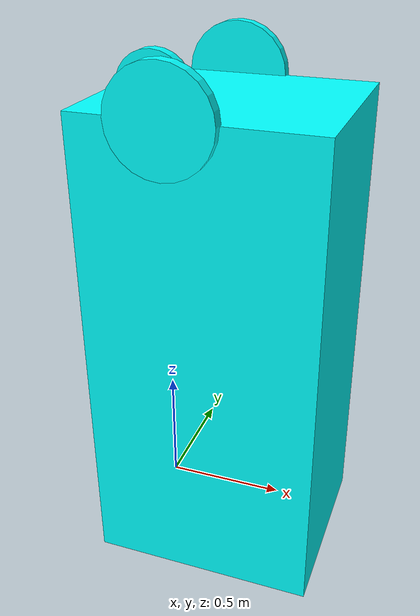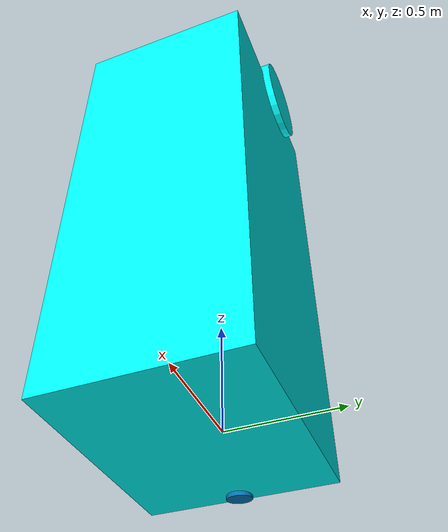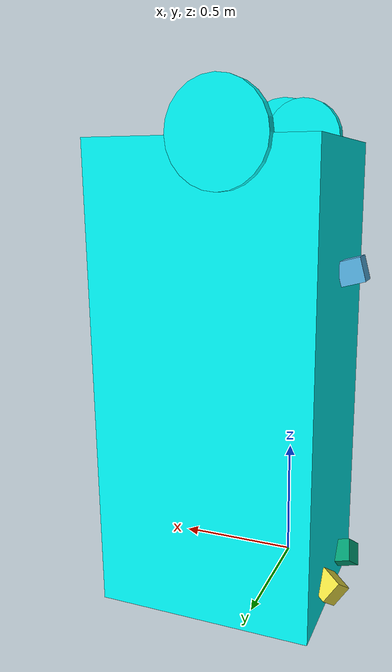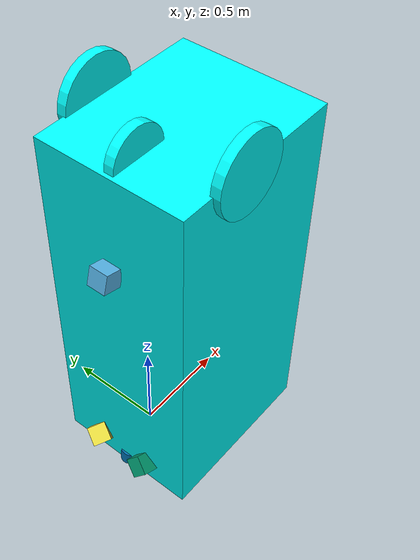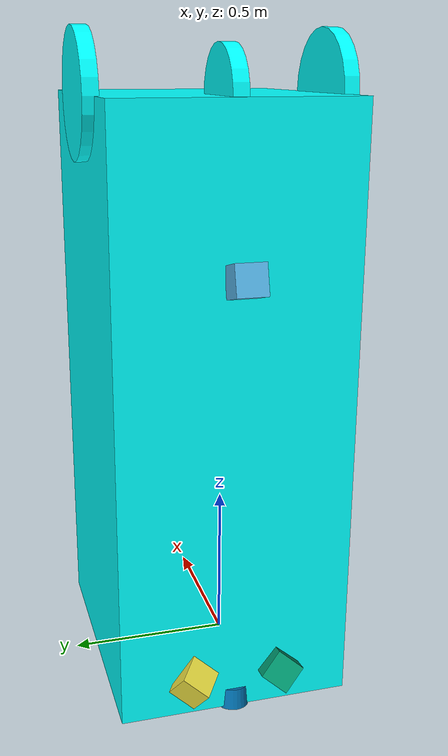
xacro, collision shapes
<?xml version="1.0"?>
<robot xmlns:xacro="http://www.ros.org/wiki/xacro" name="navvis_m6">

  <xacro:include filename="$(find lab5_package)/urdf/my_robot.xacro" />

  <link name="base_link">
  </link>

  <joint name="base_link_base_joint" type="fixed">
    <parent link="base_link" />
    <child link="base" />
    <origin xyz="0.07 0 1.792" rpy="0.0 ${pi} 0.0" />
  </joint>

  <joint name="base_link_imu_joint" type="fixed">
    <parent link="base_link" />
    <child link="imu" />
    <origin xyz="0.0 0.0 0.0" rpy="3.1405788 0.0034281 3.1382064" />
  </joint>

  <link name="imu">
    <visual>
    <geometry>
    <sphere radius="0.1" />
    </geometry>
    </visual>
    <collision>
    <geometry>
    <sphere radius="0.1" />
    </geometry>
    </collision>
  </link>

</robot>

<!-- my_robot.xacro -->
<robot xmlns:xacro="http://www.ros.org/wiki/xacro" name="my_robot">
    <!-- Include the XACRO file that defines a Hokuyo LIDAR. -->
<xacro:include filename="$(find gazebo_plugins)/test/multi_robot_scenario/xacro/laser/hokuyo.xacro" />
    <!-- Include the XACRO file that defines a Hokuyo LIDAR. -->
<xacro:include filename="$(find velodyne_description)/urdf/VLP-16.urdf.xacro"/>

  <link name="base">

    <visual>
      <origin xyz="-0.2 0 .99" rpy="0 0 0"/>
      <geometry>
        <box size="0.94 0.78 1.98"/>
      </geometry>
      <material name="Cyan">
      	<color rgba="0 1.0 1.0 1.0"/>
      </material>
    </visual>

    <collision>
      <origin xyz="-0.2 0 .99" rpy="0 0 0"/>
      <geometry>
        <box size="0.94 0.78 1.98"/>
      </geometry>
    </collision>

  </link>

    <xacro:laser name="laser_vert_bottom" parent="base" xyz="0.3157894464801903 -0.002068548615034871 0.5099999434059285" rpy="3.1354753 -1.3045001 0.0024658" meshes="package://gazebo_plugins/test/multi_robot_scenario/meshes/laser" />

    <xacro:laser name="laser_vert_top_right" parent="base" xyz="0.2978 -0.1450 1.8451" rpy="-1.1760 0.6313 1.9377" meshes="package://gazebo_plugins/test/multi_robot_scenario/meshes/laser" />

    <xacro:laser name="laser_vert_top_left" parent="base" xyz="0.2997 0.1531 1.8451" rpy="1.1760 0.6198 1.9560" meshes="package://gazebo_plugins/test/multi_robot_scenario/meshes/laser" />

  <!-- Invoke the macro to define the Hokuyo LIDAR. -->
  <VLP-16 parent="base" name="laser_horiz" topic="laser_horiz/packets" hz="10" samples="440" gpu="false">
    <origin xyz="0.2325416305773505 -0.0001380069427607134 1.920122926231907" rpy="-0.0012068 0.114646 -0.0015308" />
  </VLP-16>

  <xacro:macro name="xacro_name" params="suffix reflect">

    <link name="wheel__${suffix}">

    <visual>
      <origin xyz="0 0 0" rpy="0 0 0"/>
      <geometry>
        <cylinder radius="0.2" length="0.05"/>
      </geometry>
      <material name="Cyan">
      	<color rgba="0 1.0 1.0 1.0"/>
      </material>
    </visual>

    <collision>
      <origin xyz="0 0 0" rpy="0 0 0"/>
      <geometry>
        <cylinder radius="0.2" length="0.05"/>
      </geometry>
    </collision>

  </link>
  </xacro:macro>
  <xacro:xacro_name suffix="left" reflect="1" />
  <xacro:xacro_name suffix="right" reflect="-1" />

      <link name="wheel__center">

    <visual>
      <origin xyz="0 0 0" rpy="0 0 0"/>
      <geometry>
        <cylinder radius="0.15" length="0.05"/>
      </geometry>
      <material name="Cyan">
      	<color rgba="0 1.0 1.0 1.0"/>
      </material>
    </visual>

    <collision>
      <origin xyz="0 0 0" rpy="0 0 0"/>
      <geometry>
        <cylinder radius="0.15" length="0.05"/>
      </geometry>
    </collision>

  </link>

  <xacro:macro name="xacro_name" params="suffix reflect">

  <joint name="base_wheel__${suffix}_joint" type="continuous">
    <parent link="base"/>
    <child link="wheel__${suffix}"/>
    <origin xyz="-0.10 ${reflect * 0.4} 0.0" rpy="${-pi/2} 0.0 0.0"/>
    <limit effort="1.0" velocity="1.0"/>
  </joint>

  </xacro:macro>
  <xacro:xacro_name suffix="left" reflect="1" />
  <xacro:xacro_name suffix="right" reflect="-1" />

  <joint name="base_wheel__center_joint" type="continuous">
    <parent link="base"/>
    <child link="wheel__center"/>
    <origin xyz="0.10 0.0 0.0" rpy="${-pi/2} 0.0 0.0"/>
    <limit effort="1.0" velocity="1.0"/>
  </joint>

</robot>

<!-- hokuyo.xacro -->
<robot xmlns:xacro="http://www.ros.org/wiki/xacro">

<!-- Front Laser -->
<xacro:macro name="laser" params="name parent xyz rpy meshes" >

  <joint name="${parent}_${name}_joint" type="fixed">
      <axis xyz="0 0 1" />
      <origin xyz="${xyz}" rpy="${rpy}"/>
      <parent link="${parent}"/>
      <child link="${name}"/>
    </joint>

    <link name="${name}">
      <collision>
        <origin xyz="0 0 0" rpy="0 0 0"/>
        <geometry>
          <box size="0.1 0.1 0.1"/>
        </geometry>
      </collision>
      <visual>
        <origin xyz="0 0 0" rpy="0 0 0"/>
        <geometry>
          <mesh filename="${meshes}/hokuyo.dae"/>
        </geometry>
      </visual>
      <inertial>
        <mass value="1e-5" />
        <origin xyz="0 0 0" rpy="0 0 0"/>
        <inertia ixx="1e-6" ixy="0" ixz="0" iyy="1e-6" iyz="0" izz="1e-6" />
      </inertial>
    </link>

    <gazebo reference="${name}">
        <sensor name="laser" type="ray">
        <pose>0 0 0 0 0 0</pose>
          <ray>
            <scan>
              <horizontal>
                <!-- The URG-04LX-UG01  has  683 steps with 0.35139 Degree resolution -->
                <resolution>1</resolution>
                <max_angle>2.0944</max_angle> <!-- 120 Degree -->
                <min_angle>-2.0944</min_angle> <!-- -120 Degree -->
                <samples>683</samples>
              </horizontal>
            </scan>
            <range>
              <min>0.08</min>
              <max>5</max>
              <resolution>0.01</resolution>
            </range>
          </ray>

          <plugin name="laser" filename="libgazebo_ros_laser.so" >
            <robotNamespace></robotNamespace>
            <topicName>${name}/scan</topicName>
            <frameName>${name}</frameName>
          </plugin>

          <always_on>1</always_on>
          <update_rate>30</update_rate>
          <visualize>true</visualize>
        </sensor>
    </gazebo>
</xacro:macro>

</robot>

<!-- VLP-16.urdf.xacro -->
<robot xmlns:xacro="http://www.ros.org/wiki/xacro" name="VLP-16">
  <xacro:property name="M_PI" value="3.1415926535897931" />
  <xacro:macro name="VLP-16" params="*origin is_sim:=true parent:=base_link name:=velodyne tf_prefix:='' topic:=/velodyne_points organize_cloud:=false hz:=10 lasers:=16 samples:=1875 collision_range:=0.3 min_range:=0.0 max_range:=100.0 noise:=0.008 min_angle:=-${M_PI} max_angle:=${M_PI} gpu:=false">

    <joint name="${name}_base_mount_joint" type="fixed">
      <xacro:insert_block name="origin" />
      <parent link="${parent}"/>
      <child link="${name}_base_link"/>
    </joint>

    <link name="${name}_base_link">
      <inertial>
        <mass value="0.83"/>
        <origin xyz="0 0 0.03585"/>
        <inertia ixx="${(0.83 * (3.0*0.0516*0.0516 + 0.0717*0.0717)) / 12.0}" ixy="0" ixz="0"
          iyy="${(0.83 * (3.0*0.0516*0.0516 + 0.0717*0.0717)) / 12.0}" iyz="0"
          izz="${0.5 * 0.83 * (0.0516*0.0516)}"/>
      </inertial>
      <visual>
        <geometry>
          <mesh filename="package://velodyne_description/meshes/VLP16_base_1.dae" />
        </geometry>
      </visual>
      <visual>
        <geometry>
          <mesh filename="package://velodyne_description/meshes/VLP16_base_2.dae" />
        </geometry>
      </visual>
      <collision>
        <origin rpy="0 0 0" xyz="0 0 0.03585"/>
        <geometry>
          <cylinder radius="0.0516" length="0.0717"/>
        </geometry>
      </collision>
    </link>

    <joint name="${name}_base_scan_joint" type="fixed" >
      <origin xyz="0 0 0.0377" rpy="0 0 0" />
      <parent link="${name}_base_link" />
      <child link="${name}"/>
    </joint>

    <link name="${name}">
      <inertial>
        <mass value="0.01"/>
        <origin xyz="0 0 0"/>
        <inertia ixx="1e-7" ixy="0" ixz="0" iyy="1e-7" iyz="0" izz="1e-7"/>
      </inertial>
      <visual>
        <origin xyz="0 0 -0.0377" />
        <geometry>
          <mesh filename="package://velodyne_description/meshes/VLP16_scan.dae" />
        </geometry>
      </visual>
      <collision>
        <geometry>
          <sphere radius="0"/>
        </geometry>
      </collision>
    </link>

    <!-- Gazebo requires the velodyne_gazebo_plugins package -->
    <xacro:if value="${is_sim}">
        <gazebo reference="${name}">
            <xacro:if value="${gpu}">
                <sensor type="gpu_ray" name="${name}-VLP16">
                <pose>0 0 0 0 0 0</pose>
                <visualize>false</visualize>
                <update_rate>${hz}</update_rate>
                <ray>
                    <scan>
                    <horizontal>
                        <samples>${samples}</samples>
                        <resolution>1</resolution>
                        <min_angle>${min_angle}</min_angle>
                        <max_angle>${max_angle}</max_angle>
                    </horizontal>
                    <vertical>
                        <samples>${lasers}</samples>
                        <resolution>1</resolution>
                        <min_angle>-${15.0*M_PI/180.0}</min_angle>
                        <max_angle> ${15.0*M_PI/180.0}</max_angle>
                    </vertical>
                    </scan>
                    <range>
                    <min>${collision_range}</min>
                    <max>${max_range+1}</max>
                    <resolution>0.001</resolution>
                    </range>
                    <noise>
                    <type>gaussian</type>
                    <mean>0.0</mean>
                    <stddev>0.0</stddev>
                    </noise>
                </ray>
                <plugin name="gazebo_ros_laser_controller" filename="libgazebo_ros_velodyne_laser.so">
                    <ros>
                    <namespace>/${name}</namespace>
                    <remapping>~/out:=${topic}</remapping>
                    </ros>
                    <tf_prefix>${tf_prefix}</tf_prefix>
                    <frame_name>${name}</frame_name>
                    <organize_cloud>${organize_cloud}</organize_cloud>
                    <min_range>${min_range}</min_range>
                    <max_range>${max_range}</max_range>
                    <gaussian_noise>${noise}</gaussian_noise>
                </plugin>
                </sensor>
            </xacro:if>
            <xacro:unless value="${gpu}">
                <sensor type="ray" name="${name}-VLP16">
                <pose>0 0 0 0 0 0</pose>
                <visualize>false</visualize>
                <update_rate>${hz}</update_rate>
                <ray>
                    <scan>
                    <horizontal>
                        <samples>${samples}</samples>
                        <resolution>1</resolution>
                        <min_angle>${min_angle}</min_angle>
                        <max_angle>${max_angle}</max_angle>
                    </horizontal>
                    <vertical>
                        <samples>${lasers}</samples>
                        <resolution>1</resolution>
                        <min_angle>-${15.0*M_PI/180.0}</min_angle>
                        <max_angle> ${15.0*M_PI/180.0}</max_angle>
                    </vertical>
                    </scan>
                    <range>
                    <min>${collision_range}</min>
                    <max>${max_range+1}</max>
                    <resolution>0.001</resolution>
                    </range>
                    <noise>
                    <type>gaussian</type>
                    <mean>0.0</mean>
                    <stddev>0.0</stddev>
                    </noise>
                </ray>
                <plugin name="gazebo_ros_laser_controller" filename="libgazebo_ros_velodyne_laser.so">
                    <ros>
                    <namespace>/${name}</namespace>
                    <remapping>~/out:=${topic}</remapping>
                    </ros>
                    <tf_prefix>${tf_prefix}</tf_prefix>
                    <frame_name>${name}</frame_name>
                    <organize_cloud>${organize_cloud}</organize_cloud>
                    <min_range>${min_range}</min_range>
                    <max_range>${max_range}</max_range>
                    <gaussian_noise>${noise}</gaussian_noise>
                </plugin>
                </sensor>
            </xacro:unless>
        </gazebo>
    </xacro:if>

  </xacro:macro>
</robot>
